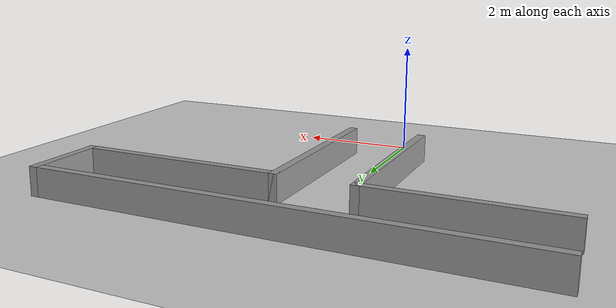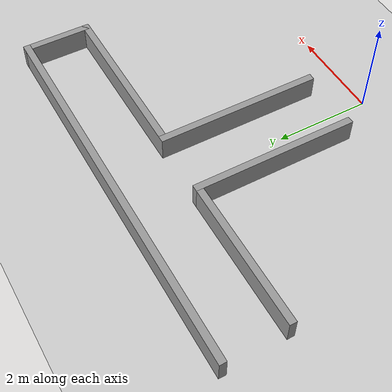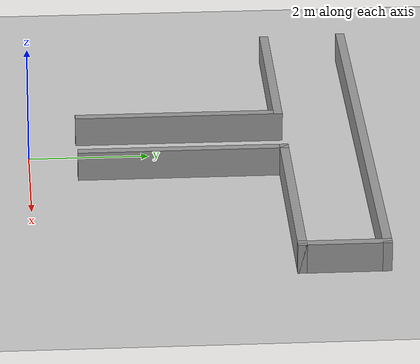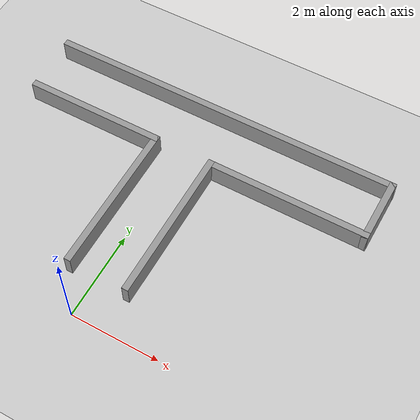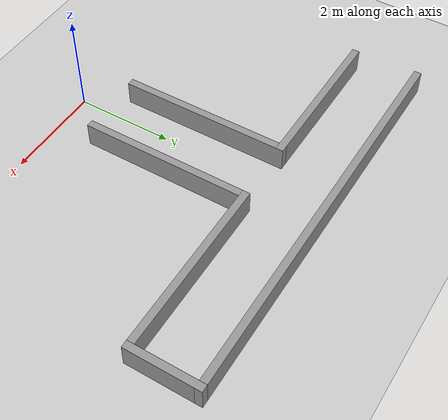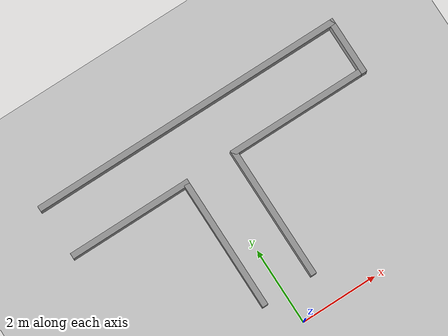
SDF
<sdf version="1.6">
 <world name="default">
  <light name="sun" type="directional">
   <pose>0 0 10 0 -0 0</pose>
   <diffuse>0.8 0.8 0.8 1</diffuse>
   <specular>0.1 0.1 0.1 1</specular>
   <attenuation>
    <range>1000</range>
    <constant>0.9</constant>
    <linear>0.01</linear>
    <quadratic>0.001</quadratic>
   </attenuation>
   <direction>-0.5 0.5 -1</direction>
  </light>
  <model name="ground_plane">
   <static>1</static>
   <link name="link">
    <collision name="collision">
     <geometry><plane><normal>0 0 1</normal><size>100 100</size></plane></geometry>
     <surface><friction><ode><mu>100</mu><mu2>50</mu2></ode></friction></surface>
    </collision>
    <visual name="visual">
     <cast_shadows>0</cast_shadows>
     <geometry><plane><normal>0 0 1</normal><size>100 100</size></plane></geometry>
     <material>
      <script><uri>file://media/materials/scripts/gazebo.material</uri><name>Gazebo/Grey</name></script>
     </material>
    </visual>
   </link>
  </model>
  <gravity>0 0 -9.8</gravity>
  <magnetic_field>6e-06 2.3e-05 -4.2e-05</magnetic_field>
  <atmosphere type="adiabatic"/>
  <physics name="default_physics" default="0" type="ode">
   <max_step_size>0.001</max_step_size>
   <real_time_factor>1</real_time_factor>
   <real_time_update_rate>1000</real_time_update_rate>
  </physics>
  <scene><ambient>0.4 0.4 0.4 1</ambient><background>0.7 0.7 0.7 1</background><shadows>1</shadows></scene>
  <spherical_coordinates>
   <surface_model>EARTH_WGS84</surface_model>
   <latitude_deg>0</latitude_deg>
   <longitude_deg>0</longitude_deg>
   <elevation>0</elevation>
   <heading_deg>0</heading_deg>
  </spherical_coordinates>
  <model name="laby1_0">
   <pose>0.336031 3.21869 0 0 -0 0</pose>
   <link name="Wall_66">
    <collision name="Wall_66_Collision">
     <geometry><box><size>3.5 0.15 0.5</size></box></geometry>
     <pose>0 0 0.25 0 -0 0</pose>
    </collision>
    <visual name="Wall_66_Visual">
     <pose>0 0 0.25 0 -0 0</pose>
     <geometry><box><size>3.5 0.15 0.5</size></box></geometry>
     <material>
      <script><uri>file://media/materials/scripts/gazebo.material</uri><name>Gazebo/Grey</name></script>
      <ambient>1 1 1 1</ambient>
     </material>
    </visual>
    <pose>-0.9 -0.675 0 0 0 -1.5708</pose>
   </link>
   <link name="Wall_68">
    <collision name="Wall_68_Collision">
     <geometry><box><size>3.5 0.15 0.5</size></box></geometry>
     <pose>0 0 0.25 0 -0 0</pose>
    </collision>
    <visual name="Wall_68_Visual">
     <pose>0 0 0.25 0 -0 0</pose>
     <geometry><box><size>3.5 0.15 0.5</size></box></geometry>
     <material>
      <script><uri>file://media/materials/scripts/gazebo.material</uri><name>Gazebo/Grey</name></script>
      <ambient>1 1 1 1</ambient>
     </material>
    </visual>
    <pose>0.45 -0.675 0 0 -0 1.5708</pose>
   </link>
   <link name="Wall_69">
    <collision name="Wall_69_Collision">
     <geometry><box><size>3.75 0.15 0.5</size></box></geometry>
     <pose>0 0 0.25 0 -0 0</pose>
    </collision>
    <visual name="Wall_69_Visual">
     <pose>0 0 0.25 0 -0 0</pose>
     <geometry><box><size>3.75 0.15 0.5</size></box></geometry>
     <material>
      <script><uri>file://media/materials/scripts/gazebo.material</uri><name>Gazebo/Grey</name></script>
      <ambient>1 1 1 1</ambient>
     </material>
    </visual>
    <pose>2.25 1 0 0 -0 0</pose>
   </link>
   <link name="Wall_70">
    <collision name="Wall_70_Collision">
     <geometry><box><size>1.5 0.15 0.5</size></box></geometry>
     <pose>0 0 0.25 0 -0 0</pose>
    </collision>
    <visual name="Wall_70_Visual">
     <pose>0 0 0.25 0 -0 0</pose>
     <geometry><box><size>1.5 0.15 0.5</size></box></geometry>
     <material>
      <script><uri>file://media/materials/scripts/gazebo.material</uri><name>Gazebo/Grey</name></script>
      <ambient>1 1 1 1</ambient>
     </material>
    </visual>
    <pose>4.05 1.675 0 0 -0 1.5708</pose>
   </link>
   <link name="Wall_71">
    <collision name="Wall_71_Collision">
     <geometry><box><size>8.25 0.15 0.5</size></box></geometry>
     <pose>0 0 0.25 0 -0 0</pose>
    </collision>
    <visual name="Wall_71_Visual">
     <pose>0 0 0.25 0 -0 0</pose>
     <geometry><box><size>8.25 0.15 0.5</size></box></geometry>
     <material>
      <script><uri>file://media/materials/scripts/gazebo.material</uri><name>Gazebo/Grey</name></script>
      <ambient>1 1 1 1</ambient>
     </material>
    </visual>
    <pose>0 2.35 0 0 -0 3.14159</pose>
   </link>
   <link name="Wall_73">
    <collision name="Wall_73_Collision">
     <geometry><box><size>3.25 0.15 0.5</size></box></geometry>
     <pose>0 0 0.25 0 -0 0</pose>
    </collision>
    <visual name="Wall_73_Visual">
     <pose>0 0 0.25 0 -0 0</pose>
     <geometry><box><size>3.25 0.15 0.5</size></box></geometry>
     <material>
      <script><uri>file://media/materials/scripts/gazebo.material</uri><name>Gazebo/Grey</name></script>
      <ambient>1 1 1 1</ambient>
     </material>
    </visual>
    <pose>-2.45 1 0 0 -0 3.14159</pose>
   </link>
   <static>1</static>
  </model>
 </world>
</sdf>
